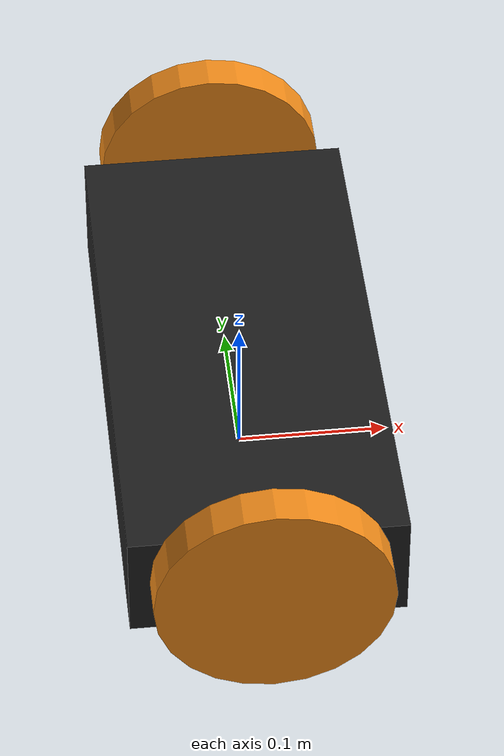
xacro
<?xml version="1.0"?>

<robot name="arlobot" xmlns:xacro="http://ros.org/wiki/xacro">

    <!-- Include all component files -->
    <xacro:include filename="$(find arlobot_description)/urdf/materials.urdf.xacro" />
    <xacro:include filename="$(find arlobot_description)/urdf/arlobot.global.urdf.xacro"/>
    <xacro:include filename="$(find arlobot_description)/urdf/arlobot.base.urdf.xacro" />

    <!-- Add each level of the robot -->
    <base color="Black"/>

</robot>

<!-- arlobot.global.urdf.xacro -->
<robot name="arlobot_global" xmlns:xacro="http://ros.org/wiki/xacro">

    <!-- This file contains global parameters (primarily constants) that are used by various xacro files and that are
         static for the Arlobot robot
    -->

    <xacro:property name="PI" value="3.1415" />

    <xacro:property name="angle_0" value="0"/>
    <xacro:property name="angle_15" value="${PI/12}"/>
    <xacro:property name="angle_30" value="${PI/6}"/>
    <xacro:property name="angle_45" value="${PI/4}"/>
    <xacro:property name="angle_60" value="${PI/3}"/>
    <xacro:property name="angle_90" value="${PI/2}"/>
    <xacro:property name="angle_120" value="${2*PI/3}"/>
    <xacro:property name="angle_135" value="${3*PI/4}"/>
    <xacro:property name="angle_150" value="${5*PI/6}"/>
    <xacro:property name="angle_165" value="${11*PI/12}"/>
    <xacro:property name="angle_180" value="${PI}"/>
    <xacro:property name="angle_195" value="${13*PI/12}"/>
    <xacro:property name="angle_210" value="${7*PI/6}"/>
    <xacro:property name="angle_225" value="${5*PI/4}"/>
    <xacro:property name="angle_240" value="${4*PI/3}"/>
    <xacro:property name="angle_300" value="${5*PI/3}"/>
    <xacro:property name="angle_315" value="${7*PI/4}"/>
    <xacro:property name="angle_330" value="${11*PI/6}"/>
    <xacro:property name="angle_345" value="${23*PI/24}"/>

    <xacro:property name="cos_angle_0" value="1.0000"/>
    <xacro:property name="cos_angle_15" value="0.9659"/>
    <xacro:property name="cos_angle_30" value="0.8660"/>
    <xacro:property name="cos_angle_45" value="0.7071"/>
    <xacro:property name="cos_angle_60" value="0.5000"/>
    <xacro:property name="cos_angle_120" value="-0.5000"/>
    <xacro:property name="cos_angle_135" value="-0.7071"/>
    <xacro:property name="cos_angle_150" value="-0.8660"/>
    <xacro:property name="cos_angle_165" value="-0.9659"/>
    <xacro:property name="cos_angle_180" value="-1.0000"/>
    <xacro:property name="cos_angle_195" value="-0.9659"/>
    <xacro:property name="cos_angle_210" value="-0.8660"/>
    <xacro:property name="cos_angle_225" value="-0.7071"/>
    <xacro:property name="cos_angle_240" value="-0.5000"/>
    <xacro:property name="cos_angle_300" value="0.5000"/>
    <xacro:property name="cos_angle_315" value="0.7071"/>
    <xacro:property name="cos_angle_330" value="0.8660"/>
    <xacro:property name="cos_angle_345" value="0.9659"/>

    <xacro:property name="sin_angle_0" value="0.0000"/>
    <xacro:property name="sin_angle_15" value="0.2588"/>
    <xacro:property name="sin_angle_30" value="0.5000"/>
    <xacro:property name="sin_angle_45" value="0.7071"/>
    <xacro:property name="sin_angle_60" value="0.8660"/>
    <xacro:property name="sin_angle_120" value="0.8660"/>
    <xacro:property name="sin_angle_135" value="0.7071"/>
    <xacro:property name="sin_angle_150" value="0.5000"/>
    <xacro:property name="sin_angle_165" value="0.2588"/>
    <xacro:property name="sin_angle_180" value="0.0000"/>
    <xacro:property name="sin_angle_195" value="-0.2588"/>
    <xacro:property name="sin_angle_210" value="-0.5000"/>
    <xacro:property name="sin_angle_225" value="-0.7071"/>
    <xacro:property name="sin_angle_240" value="-0.8660"/>
    <xacro:property name="sin_angle_300" value="-0.8660"/>
    <xacro:property name="sin_angle_315" value="-0.7071"/>
    <xacro:property name="sin_angle_330" value="-0.5000"/>
    <xacro:property name="sin_angle_345" value="-0.2588"/>

    <!-- Component parameters -->

    <xacro:property name="ultrasonic_length" value="0.0174"/>
    <xacro:property name="ultrasonic_width" value="0.05"/>
    <xacro:property name="ultrasonic_height" value="0.055"/>

    <xacro:property name="infrared_length" value="0.01"/>
    <xacro:property name="infrared_width" value="0.035"/>
    <xacro:property name="infrared_height" value="0.01"/>

    <xacro:property name="platter_radius" value="0.2286" />
    <xacro:property name="platter_height" value="0.009525" />

    <xacro:property name="battery_box_size_x" value="0.1778" />
    <xacro:property name="battery_box_size_y" value="0.36195" />
    <xacro:property name="battery_box_size_z" value="0.0762" />

    <xacro:property name="standoff_height" value="0.127"/>

    <!-- Note: wheel length is the wheel width -->
    <xacro:property name="wheel_length" value="0.0254" />
    <xacro:property name="wheel_radius" value="0.0762" />

    <!-- Note: For Arlobot, the wheel is offset (positive Z axis) relative to the battery box -->
    <xacro:property name="wheel_offset_x" value="0.00" />
    <xacro:property name="wheel_offset_y" value="${battery_box_size_y/2 + wheel_length}" />
    <xacro:property name="wheel_offset_z" value="0.0178" />

    <!-- Base offset values -->
    <xacro:property name="base_size_x" value="${battery_box_size_x}" />
    <xacro:property name="base_size_y" value="${battery_box_size_y}" />
    <xacro:property name="base_size_z" value="${battery_box_size_z}" />
    <xacro:property name="base_offset_z" value="${wheel_radius - wheel_offset_z}"/>

    <!-- Base level offset values -->
    <xacro:property name="baselevel_offset_x" value="0" />
    <xacro:property name="baselevel_offset_y" value="0" />
    <xacro:property name="baselevel_offset_z" value="${base_size_z/2 + platter_height/2}" />
    <!-- Note: baselevel_top_offset_z is relative to the parent -->
    <xacro:property name="baselevel_top_offset_z" value="${platter_height/2}"/>

    <!-- Middle level offset values -->
    <xacro:property name="midlevel_offset_x" value="0"/>
    <xacro:property name="midlevel_offset_y" value="0"/>
    <xacro:property name="midlevel_offset_z" value="${standoff_height + platter_height/2}"/>
    <!-- Note: midlevel_top_offset_z is relative to the parent -->
    <xacro:property name="midlevel_top_offset_z" value="${platter_height/2}"/>

    <!-- Top level offset values -->
    <xacro:property name="toplevel_offset_x" value="0"/>
    <xacro:property name="toplevel_offset_y" value="0"/>
    <xacro:property name="toplevel_offset_z" value="${standoff_height + platter_height/2}"/>
    <!-- Note: toplevel_top_offset_z is relative to the parent -->
    <xacro:property name="toplevel_top_offset_z" value="${platter_height/2}"/>

</robot>

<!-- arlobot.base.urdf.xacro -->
<robot name="base" xmlns:xacro="http://ros.org/wiki/xacro">

    <!-- base_footprint is a fictitious link(frame) that is on the ground
         right below base_link origin, navigation stack depends on this frame -->

    <!-- The base xacro macro -->
    <macro name="base" params="color">
        <link name="base_footprint">
            <visual>
              <origin xyz="0 0 0" rpy="0 0 0" />
              <geometry>
                  <box size="0.05 0.05 0.001" />
              </geometry>
              <material name="TransparentGreen" />
            </visual>
        </link>

        <link name="base_link">
            <visual>
                <origin xyz="0 0 0" rpy="0 0 0" />
                <geometry>
                    <box size="${base_size_x} ${base_size_y} ${base_size_z}" />
                </geometry>
                <material name="${color}" />
          </visual>
          <collision>
              <origin xyz="0 0 0" rpy="0 0 0" />
              <geometry>
                  <box size="${base_size_x} ${base_size_y} ${base_size_z}" />
              </geometry>
            </collision>
        </link>

        <joint name="base_joint" type="fixed">
            <!-- Note: The wheels extend radius - z offset below the battery box so we must offset the base_joint by that same
            amount in order for the robot to reset at 0 offset on the Z axis
            -->
            <origin xyz="0 0 ${base_offset_z}" rpy="0 0 0" />
            <parent link="base_footprint"/>
            <child link="base_link" />
        </joint>
    </macro>

    <macro name="wheel" params="parent suffix reflect color">
        <joint name="${parent}_${suffix}_wheel_joint" type="fixed">
            <parent link="${parent}_link"/>
            <child link="${suffix}_wheel_link"/>
            <origin xyz="${wheel_offset_x} ${reflect*wheel_offset_y} ${wheel_offset_z}" rpy="${reflect*PI/2} 0 0" />
            <limit effort="0.1" velocity="0.01"/>
            <axis xyz="0 0 1" />
        </joint>

        <link name="${suffix}_wheel_link">
            <visual>
                <origin xyz="0 0 0" rpy="0 0 0" />
                <geometry>
                    <cylinder radius="${wheel_radius}" length="${wheel_length}"/>
                </geometry>
                <material name="${color}" />
            </visual>
        </link>

    </macro>

    <wheel parent="base" suffix="left" reflect="1" color="Orange"/>
    <wheel parent="base" suffix="right" reflect="-1" color="Orange"/>

</robot>
